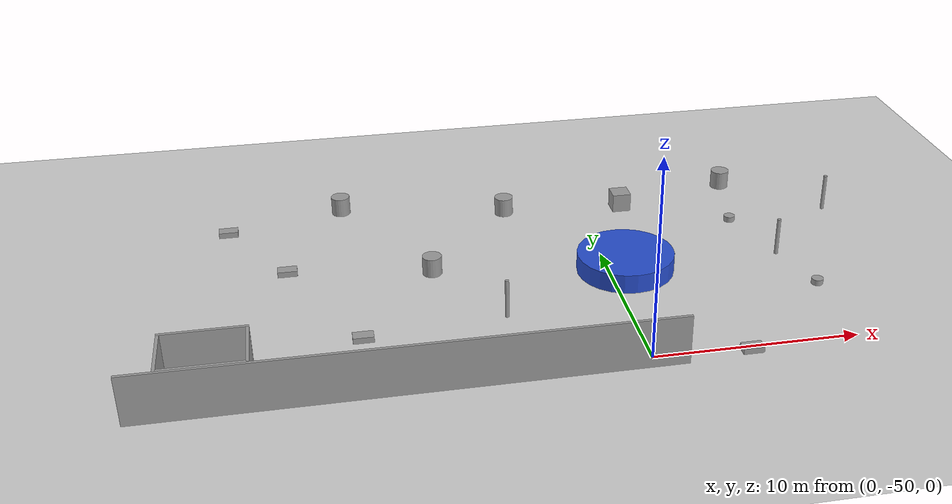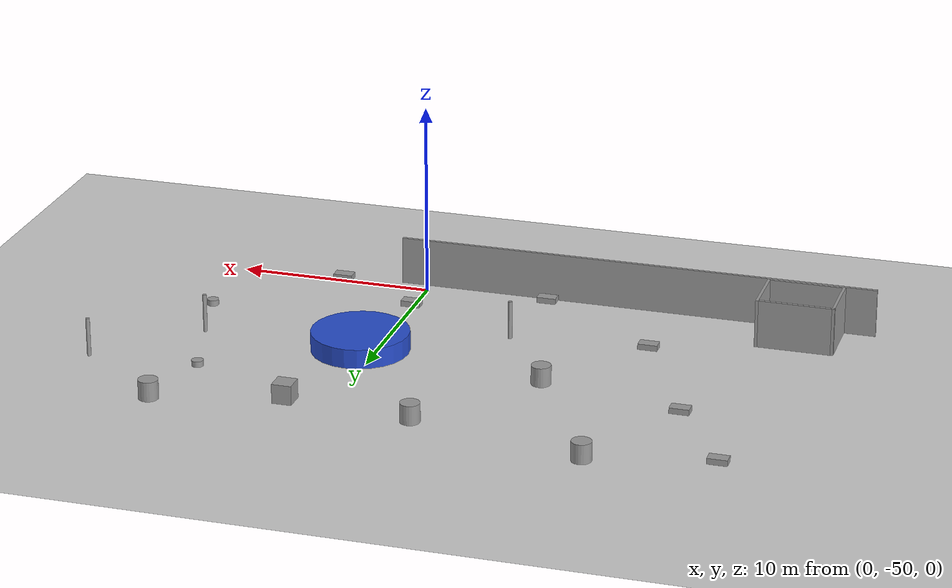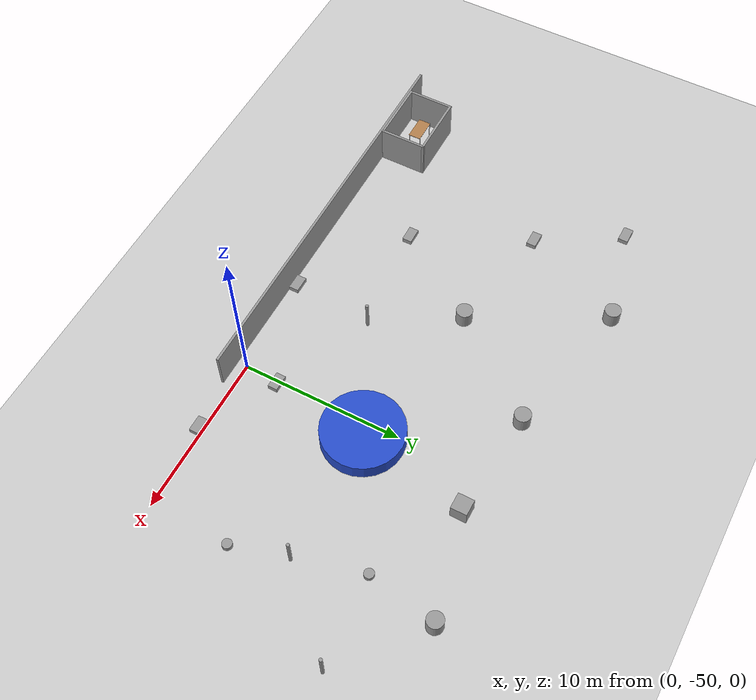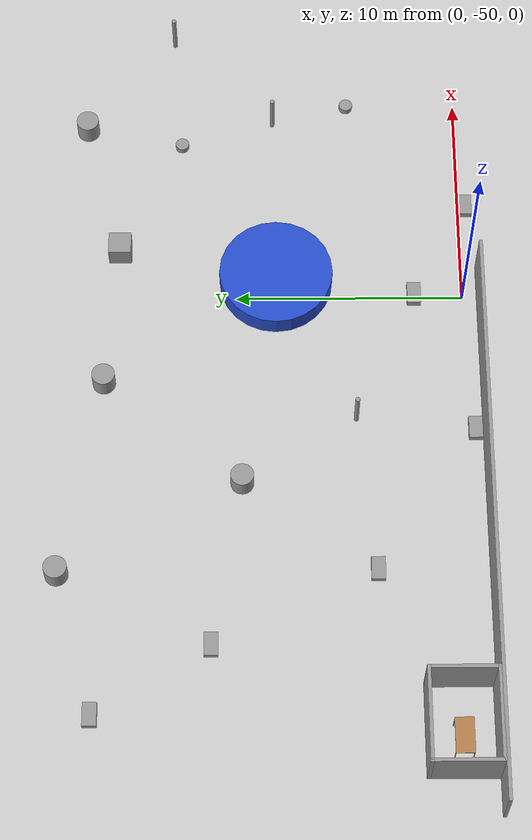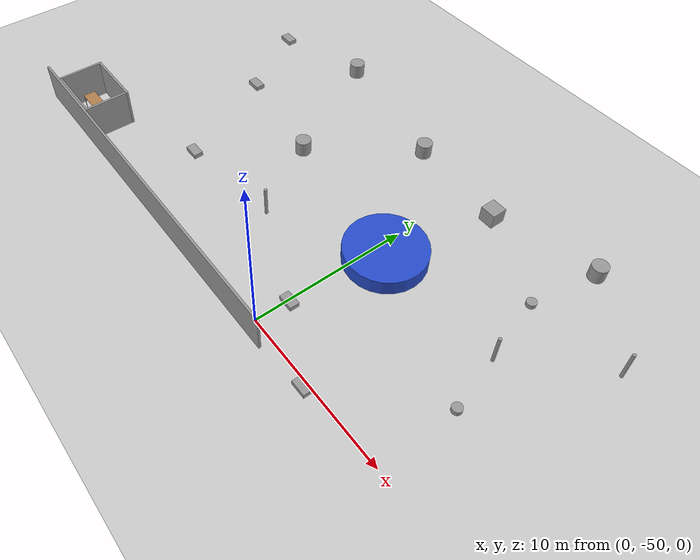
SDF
<sdf version="1.6">
 <world name="default">
  <model name="ground_plane">
   <static>1</static>
   <link name="link">
    <collision name="collision">
     <geometry><plane><normal>0 0 1</normal><size>105 105</size></plane></geometry>
     <surface>
      <contact><collide_bitmask>65535</collide_bitmask></contact>
      <friction><ode><mu>100</mu><mu2>50</mu2></ode></friction>
     </surface>
    </collision>
    <visual name="visual">
     <cast_shadows>0</cast_shadows>
     <geometry><plane><normal>0 0 1</normal><size>105 105</size></plane></geometry>
     <material>
      <script><uri>file://media/materials/scripts/gazebo.material</uri><name>Gazebo/Grey</name></script>
     </material>
    </visual>
   </link>
  </model>
  <model name="base3x4_37">
   <pose>-19.8731 -49.167 0 0 -0 0</pose>
   <link name="Wall_18">
    <collision name="Wall_18_Collision">
     <geometry><box><size>3 0.15 2.5</size></box></geometry>
     <pose>0 0 1.25 0 -0 0</pose>
    </collision>
    <visual name="Wall_18_Visual">
     <pose>0 0 1.25 0 -0 0</pose>
     <geometry><box><size>3 0.15 2.5</size></box></geometry>
     <material>
      <script><uri>file://media/materials/scripts/gazebo.material</uri><name>Gazebo/Grey</name></script>
      <ambient>1 1 1 1</ambient>
     </material>
     <meta><layer>0</layer></meta>
    </visual>
    <pose>-1.925 -0 0 0 -0 -1.5708</pose>
   </link>
   <link name="Wall_19">
    <collision name="Wall_19_Collision">
     <geometry><box><size>4 0.15 2.5</size></box></geometry>
     <pose>0 0 1.25 0 -0 0</pose>
    </collision>
    <visual name="Wall_19_Visual">
     <pose>0 0 1.25 0 -0 0</pose>
     <geometry><box><size>4 0.15 2.5</size></box></geometry>
     <material>
      <script><uri>file://media/materials/scripts/gazebo.material</uri><name>Gazebo/Grey</name></script>
      <ambient>1 1 1 1</ambient>
     </material>
     <meta><layer>0</layer></meta>
    </visual>
    <pose>-0 -1.425 0 0 -0 0</pose>
   </link>
   <link name="Wall_20">
    <collision name="Wall_20_Collision">
     <geometry><box><size>3 0.15 2.5</size></box></geometry>
     <pose>0 0 1.25 0 -0 0</pose>
    </collision>
    <visual name="Wall_20_Visual">
     <pose>0 0 1.25 0 -0 0</pose>
     <geometry><box><size>3 0.15 2.5</size></box></geometry>
     <material>
      <script><uri>file://media/materials/scripts/gazebo.material</uri><name>Gazebo/Grey</name></script>
      <ambient>1 1 1 1</ambient>
     </material>
     <meta><layer>0</layer></meta>
    </visual>
    <pose>1.925 -0 0 0 -0 1.5708</pose>
   </link>
   <link name="Wall_21">
    <collision name="Wall_21_Collision">
     <geometry><box><size>4 0.15 2.5</size></box></geometry>
     <pose>0 0 1.25 0 -0 0</pose>
    </collision>
    <visual name="Wall_21_Visual">
     <pose>0 0 1.25 0 -0 0</pose>
     <geometry><box><size>4 0.15 2.5</size></box></geometry>
     <material>
      <script><uri>file://media/materials/scripts/gazebo.material</uri><name>Gazebo/Grey</name></script>
      <ambient>1 1 1 1</ambient>
     </material>
     <meta><layer>0</layer></meta>
    </visual>
    <pose>-0 1.425 0 0 -0 3.14159</pose>
   </link>
   <static>1</static>
  </model>
  <model name="wall_25m_7">
   <pose>-10.9546 -50.7217 0 0 -0 0</pose>
   <link name="Wall_28">
    <collision name="Wall_28_Collision">
     <geometry><box><size>25 0.15 2.5</size></box></geometry>
     <pose>0 0 1.25 0 -0 0</pose>
    </collision>
    <visual name="Wall_28_Visual">
     <pose>0 0 1.25 0 -0 0</pose>
     <geometry><box><size>25 0.15 2.5</size></box></geometry>
     <material>
      <script><uri>file://media/materials/scripts/gazebo.material</uri><name>Gazebo/Grey</name></script>
      <ambient>1 1 1 1</ambient>
     </material>
     <meta><layer>0</layer></meta>
    </visual>
   </link>
   <static>1</static>
  </model>
  <model name="table_14">
   <static>1</static>
   <link name="link">
    <collision name="surface">
     <pose>0 0 1 0 -0 0</pose>
     <geometry><box><size>1.5 0.8 0.03</size></box></geometry>
     <surface><friction><ode><mu>0.6</mu><mu2>0.6</mu2></ode></friction></surface>
    </collision>
    <visual name="visual1">
     <pose>0 0 1 0 -0 0</pose>
     <geometry><box><size>1.5 0.8 0.03</size></box></geometry>
     <material>
      <script><uri>file://media/materials/scripts/gazebo.material</uri><name>Gazebo/Wood</name></script>
     </material>
    </visual>
    <collision name="front_left_leg">
     <pose>0.68 0.38 0.5 0 -0 0</pose>
     <geometry><cylinder><radius>0.02</radius><length>1</length></cylinder></geometry>
    </collision>
    <visual name="front_left_leg">
     <pose>0.68 0.38 0.5 0 -0 0</pose>
     <geometry><cylinder><radius>0.02</radius><length>1</length></cylinder></geometry>
     <material>
      <script><uri>file://media/materials/scripts/gazebo.material</uri><name>Gazebo/Grey</name></script>
     </material>
    </visual>
    <collision name="front_right_leg">
     <pose>0.68 -0.38 0.5 0 -0 0</pose>
     <geometry><cylinder><radius>0.02</radius><length>1</length></cylinder></geometry>
    </collision>
    <visual name="front_right_leg">
     <pose>0.68 -0.38 0.5 0 -0 0</pose>
     <geometry><cylinder><radius>0.02</radius><length>1</length></cylinder></geometry>
     <material>
      <script><uri>file://media/materials/scripts/gazebo.material</uri><name>Gazebo/Grey</name></script>
     </material>
    </visual>
    <collision name="back_right_leg">
     <pose>-0.68 -0.38 0.5 0 -0 0</pose>
     <geometry><cylinder><radius>0.02</radius><length>1</length></cylinder></geometry>
    </collision>
    <visual name="back_right_leg">
     <pose>-0.68 -0.38 0.5 0 -0 0</pose>
     <geometry><cylinder><radius>0.02</radius><length>1</length></cylinder></geometry>
     <material>
      <script><uri>file://media/materials/scripts/gazebo.material</uri><name>Gazebo/Grey</name></script>
     </material>
    </visual>
    <collision name="back_left_leg">
     <pose>-0.68 0.38 0.5 0 -0 0</pose>
     <geometry><cylinder><radius>0.02</radius><length>1</length></cylinder></geometry>
    </collision>
    <visual name="back_left_leg">
     <pose>-0.68 0.38 0.5 0 -0 0</pose>
     <geometry><cylinder><radius>0.02</radius><length>1</length></cylinder></geometry>
     <material>
      <script><uri>file://media/materials/scripts/gazebo.material</uri><name>Gazebo/Grey</name></script>
     </material>
    </visual>
   </link>
   <pose>-20.3507 -49.1946 0 0 -0 0</pose>
  </model>
  <model name="unit_cylinder_r2.5_l1">
   <link name="link">
    <inertial>
     <mass>1</mass>
     <inertia><ixx>0.145833</ixx><ixy>0</ixy><ixz>0</ixz><iyy>0.145833</iyy><iyz>0</iyz><izz>0.125</izz></inertia>
    </inertial>
    <visual name="visual">
     <geometry><cylinder><radius>2.5</radius><length>1</length></cylinder></geometry>
     <material>
      <script><name>Gazebo/Blue</name><uri>file://media/materials/scripts/gazebo.material</uri></script>
      <shader type="vertex"><normal_map>__default__</normal_map></shader>
      <ambient>0.3 0.3 0.3 1</ambient>
      <diffuse>0.7 0.7 0.7 1</diffuse>
      <specular>0.01 0.01 0.01 1</specular>
      <emissive>0 0 0 1</emissive>
     </material>
    </visual>
    <collision name="collision">
     <geometry><cylinder><radius>2.5</radius><length>1</length></cylinder></geometry>
     <surface>
      <friction>
       <ode><mu>1</mu><mu2>1</mu2><fdir1>0 0 0</fdir1><slip1>0</slip1><slip2>0</slip2></ode>
       <torsional>
        <coefficient>1</coefficient>
        <patch_radius>0</patch_radius>
        <surface_radius>0</surface_radius>
        <use_patch_radius>1</use_patch_radius>
        <ode><slip>0</slip></ode>
       </torsional>
      </friction>
      <bounce><restitution_coefficient>0</restitution_coefficient><threshold>1e+06</threshold></bounce>
      <contact>
       <collide_without_contact>0</collide_without_contact>
       <collide_without_contact_bitmask>1</collide_without_contact_bitmask>
       <collide_bitmask>1</collide_bitmask>
       <ode>
        <soft_cfm>0</soft_cfm>
        <soft_erp>0.2</soft_erp>
        <kp>1e+13</kp>
        <kd>1</kd>
        <max_vel>0.01</max_vel>
        <min_depth>0</min_depth>
       </ode>
       <bullet>
        <split_impulse>1</split_impulse>
        <split_impulse_penetration_threshold>-0.01</split_impulse_penetration_threshold>
        <soft_cfm>0</soft_cfm>
        <soft_erp>0.2</soft_erp>
        <kp>1e+13</kp>
        <kd>1</kd>
       </bullet>
      </contact>
     </surface>
    </collision>
   </link>
   <static>0</static>
   <pose>0.871877 -41.7628 0.5 0 -0 0.00014</pose>
  </model>
  <model name="unit_cylinder30x30cm">
   <link name="link">
    <inertial>
     <mass>1</mass>
     <inertia><ixx>0.145833</ixx><ixy>0</ixy><ixz>0</ixz><iyy>0.145833</iyy><iyz>0</iyz><izz>0.125</izz></inertia>
    </inertial>
    <visual name="visual">
     <geometry><cylinder><radius>0.3</radius><length>0.3</length></cylinder></geometry>
     <material>
      <script><name>Gazebo/Grey</name><uri>file://media/materials/scripts/gazebo.material</uri></script>
      <shader type="vertex"><normal_map>__default__</normal_map></shader>
      <ambient>0.3 0.3 0.3 1</ambient>
      <diffuse>0.7 0.7 0.7 1</diffuse>
      <specular>0.01 0.01 0.01 1</specular>
      <emissive>0 0 0 1</emissive>
     </material>
    </visual>
    <collision name="collision">
     <geometry><cylinder><radius>0.3</radius><length>0.3</length></cylinder></geometry>
     <surface>
      <friction>
       <ode><mu>1</mu><mu2>1</mu2><fdir1>0 0 0</fdir1><slip1>0</slip1><slip2>0</slip2></ode>
       <torsional>
        <coefficient>1</coefficient>
        <patch_radius>0</patch_radius>
        <surface_radius>0</surface_radius>
        <use_patch_radius>1</use_patch_radius>
        <ode><slip>0</slip></ode>
       </torsional>
      </friction>
      <bounce><restitution_coefficient>0</restitution_coefficient><threshold>1e+06</threshold></bounce>
      <contact>
       <collide_without_contact>0</collide_without_contact>
       <collide_without_contact_bitmask>1</collide_without_contact_bitmask>
       <collide_bitmask>1</collide_bitmask>
       <ode>
        <soft_cfm>0</soft_cfm>
        <soft_erp>0.2</soft_erp>
        <kp>1e+13</kp>
        <kd>1</kd>
        <max_vel>0.01</max_vel>
        <min_depth>0</min_depth>
       </ode>
       <bullet>
        <split_impulse>1</split_impulse>
        <split_impulse_penetration_threshold>-0.01</split_impulse_penetration_threshold>
        <soft_cfm>0</soft_cfm>
        <soft_erp>0.2</soft_erp>
        <kp>1e+13</kp>
        <kd>1</kd>
       </bullet>
      </contact>
     </surface>
    </collision>
   </link>
   <static>0</static>
   <pose>10.0032 -45.0422 0.149805 -0 -0 -0</pose>
  </model>
  <model name="unit_cylinder30x30cm_0">
   <link name="link">
    <inertial>
     <mass>1</mass>
     <inertia><ixx>0.145833</ixx><ixy>0</ixy><ixz>0</ixz><iyy>0.145833</iyy><iyz>0</iyz><izz>0.125</izz></inertia>
    </inertial>
    <visual name="visual">
     <geometry><cylinder><radius>0.3</radius><length>0.3</length></cylinder></geometry>
     <material>
      <script><name>Gazebo/Grey</name><uri>file://media/materials/scripts/gazebo.material</uri></script>
      <shader type="vertex"><normal_map>__default__</normal_map></shader>
      <ambient>0.3 0.3 0.3 1</ambient>
      <diffuse>0.7 0.7 0.7 1</diffuse>
      <specular>0.01 0.01 0.01 1</specular>
      <emissive>0 0 0 1</emissive>
     </material>
    </visual>
    <collision name="collision">
     <geometry><cylinder><radius>0.3</radius><length>0.3</length></cylinder></geometry>
     <surface>
      <friction>
       <ode><mu>1</mu><mu2>1</mu2><fdir1>0 0 0</fdir1><slip1>0</slip1><slip2>0</slip2></ode>
       <torsional>
        <coefficient>1</coefficient>
        <patch_radius>0</patch_radius>
        <surface_radius>0</surface_radius>
        <use_patch_radius>1</use_patch_radius>
        <ode><slip>0</slip></ode>
       </torsional>
      </friction>
      <bounce><restitution_coefficient>0</restitution_coefficient><threshold>1e+06</threshold></bounce>
      <contact>
       <collide_without_contact>0</collide_without_contact>
       <collide_without_contact_bitmask>1</collide_without_contact_bitmask>
       <collide_bitmask>1</collide_bitmask>
       <ode>
        <soft_cfm>0</soft_cfm>
        <soft_erp>0.2</soft_erp>
        <kp>1e+13</kp>
        <kd>1</kd>
        <max_vel>0.01</max_vel>
        <min_depth>0</min_depth>
       </ode>
       <bullet>
        <split_impulse>1</split_impulse>
        <split_impulse_penetration_threshold>-0.01</split_impulse_penetration_threshold>
        <soft_cfm>0</soft_cfm>
        <soft_erp>0.2</soft_erp>
        <kp>1e+13</kp>
        <kd>1</kd>
       </bullet>
      </contact>
     </surface>
    </collision>
   </link>
   <static>0</static>
   <pose>7.92592 -37.5286 0.149805 -0 -0 -0</pose>
  </model>
  <model name="unit_box_100x60x30cm">
   <link name="link">
    <inertial>
     <mass>1</mass>
     <inertia>
      <ixx>0.166667</ixx>
      <ixy>0</ixy>
      <ixz>0</ixz>
      <iyy>0.166667</iyy>
      <iyz>0</iyz>
      <izz>0.166667</izz>
     </inertia>
    </inertial>
    <visual name="visual">
     <geometry><box><size>1 0.6 0.3</size></box></geometry>
     <material>
      <script><name>Gazebo/Grey</name><uri>file://media/materials/scripts/gazebo.material</uri></script>
      <shader type="vertex"><normal_map>__default__</normal_map></shader>
      <ambient>0.3 0.3 0.3 1</ambient>
      <diffuse>0.7 0.7 0.7 1</diffuse>
      <specular>0.01 0.01 0.01 1</specular>
      <emissive>0 0 0 1</emissive>
     </material>
    </visual>
    <collision name="collision">
     <geometry><box><size>1 0.6 0.3</size></box></geometry>
     <surface>
      <friction>
       <ode><mu>1</mu><mu2>1</mu2><fdir1>0 0 0</fdir1><slip1>0</slip1><slip2>0</slip2></ode>
       <torsional>
        <coefficient>1</coefficient>
        <patch_radius>0</patch_radius>
        <surface_radius>0</surface_radius>
        <use_patch_radius>1</use_patch_radius>
        <ode><slip>0</slip></ode>
       </torsional>
      </friction>
      <bounce><restitution_coefficient>0</restitution_coefficient><threshold>1e+06</threshold></bounce>
      <contact>
       <collide_without_contact>0</collide_without_contact>
       <collide_without_contact_bitmask>1</collide_without_contact_bitmask>
       <collide_bitmask>1</collide_bitmask>
       <ode>
        <soft_cfm>0</soft_cfm>
        <soft_erp>0.2</soft_erp>
        <kp>1e+13</kp>
        <kd>1</kd>
        <max_vel>0.01</max_vel>
        <min_depth>0</min_depth>
       </ode>
       <bullet>
        <split_impulse>1</split_impulse>
        <split_impulse_penetration_threshold>-0.01</split_impulse_penetration_threshold>
        <soft_cfm>0</soft_cfm>
        <soft_erp>0.2</soft_erp>
        <kp>1e+13</kp>
        <kd>1</kd>
       </bullet>
      </contact>
     </surface>
    </collision>
   </link>
   <static>0</static>
   <pose>-12.88 -45.9622 0.15 0 -0 0</pose>
  </model>
  <model name="unit_box_100x60x30cm_0">
   <link name="link">
    <inertial>
     <mass>1</mass>
     <inertia>
      <ixx>0.166667</ixx>
      <ixy>0</ixy>
      <ixz>0</ixz>
      <iyy>0.166667</iyy>
      <iyz>0</iyz>
      <izz>0.166667</izz>
     </inertia>
    </inertial>
    <visual name="visual">
     <geometry><box><size>1 0.6 0.3</size></box></geometry>
     <material>
      <script><name>Gazebo/Grey</name><uri>file://media/materials/scripts/gazebo.material</uri></script>
      <shader type="vertex"><normal_map>__default__</normal_map></shader>
      <ambient>0.3 0.3 0.3 1</ambient>
      <diffuse>0.7 0.7 0.7 1</diffuse>
      <specular>0.01 0.01 0.01 1</specular>
      <emissive>0 0 0 1</emissive>
     </material>
    </visual>
    <collision name="collision">
     <geometry><box><size>1 0.6 0.3</size></box></geometry>
     <surface>
      <friction>
       <ode><mu>1</mu><mu2>1</mu2><fdir1>0 0 0</fdir1><slip1>0</slip1><slip2>0</slip2></ode>
       <torsional>
        <coefficient>1</coefficient>
        <patch_radius>0</patch_radius>
        <surface_radius>0</surface_radius>
        <use_patch_radius>1</use_patch_radius>
        <ode><slip>0</slip></ode>
       </torsional>
      </friction>
      <bounce><restitution_coefficient>0</restitution_coefficient><threshold>1e+06</threshold></bounce>
      <contact>
       <collide_without_contact>0</collide_without_contact>
       <collide_without_contact_bitmask>1</collide_without_contact_bitmask>
       <collide_bitmask>1</collide_bitmask>
       <ode>
        <soft_cfm>0</soft_cfm>
        <soft_erp>0.2</soft_erp>
        <kp>1e+13</kp>
        <kd>1</kd>
        <max_vel>0.01</max_vel>
        <min_depth>0</min_depth>
       </ode>
       <bullet>
        <split_impulse>1</split_impulse>
        <split_impulse_penetration_threshold>-0.01</split_impulse_penetration_threshold>
        <soft_cfm>0</soft_cfm>
        <soft_erp>0.2</soft_erp>
        <kp>1e+13</kp>
        <kd>1</kd>
       </bullet>
      </contact>
     </surface>
    </collision>
   </link>
   <static>0</static>
   <pose>-16.1827 -38.9703 0.15 0 -0 0</pose>
  </model>
  <model name="unit_cylinder_2_clone">
   <pose>8.76916 -33.2149 0.499805 -0 -0 -0</pose>
   <link name="link">
    <inertial>
     <mass>1</mass>
     <inertia><ixx>0.145833</ixx><ixy>0</ixy><ixz>0</ixz><iyy>0.145833</iyy><iyz>0</iyz><izz>0.125</izz></inertia>
    </inertial>
    <collision name="collision">
     <geometry><cylinder><radius>0.5</radius><length>1</length></cylinder></geometry>
    </collision>
    <visual name="visual">
     <geometry><cylinder><radius>0.5</radius><length>1</length></cylinder></geometry>
     <material>
      <script><name>Gazebo/Grey</name><uri>file://media/materials/scripts/gazebo.material</uri></script>
     </material>
    </visual>
   </link>
  </model>
  <model name="unit_cylinder_2_clone_0">
   <pose>-4.1392 -34.2546 0.499805 -0 -0 -0</pose>
   <link name="link">
    <inertial>
     <mass>1</mass>
     <inertia><ixx>0.145833</ixx><ixy>0</ixy><ixz>0</ixz><iyy>0.145833</iyy><iyz>0</iyz><izz>0.125</izz></inertia>
    </inertial>
    <collision name="collision">
     <geometry><cylinder><radius>0.5</radius><length>1</length></cylinder></geometry>
    </collision>
    <visual name="visual">
     <geometry><cylinder><radius>0.5</radius><length>1</length></cylinder></geometry>
     <material>
      <script><name>Gazebo/Grey</name><uri>file://media/materials/scripts/gazebo.material</uri></script>
     </material>
    </visual>
   </link>
  </model>
  <model name="unit_cylinder_2_clone_1">
   <pose>-8.90648 -40.2653 0.499805 -0 -0 -0</pose>
   <link name="link">
    <inertial>
     <mass>1</mass>
     <inertia><ixx>0.145833</ixx><ixy>0</ixy><ixz>0</ixz><iyy>0.145833</iyy><iyz>0</iyz><izz>0.125</izz></inertia>
    </inertial>
    <collision name="collision">
     <geometry><cylinder><radius>0.5</radius><length>1</length></cylinder></geometry>
    </collision>
    <visual name="visual">
     <geometry><cylinder><radius>0.5</radius><length>1</length></cylinder></geometry>
     <material>
      <script><name>Gazebo/Grey</name><uri>file://media/materials/scripts/gazebo.material</uri></script>
     </material>
    </visual>
   </link>
  </model>
  <model name="unit_cylinder_2_clone_2">
   <pose>-13.0382 -32.4779 0.499805 -0 -0 -0</pose>
   <link name="link">
    <inertial>
     <mass>1</mass>
     <inertia><ixx>0.145833</ixx><ixy>0</ixy><ixz>0</ixz><iyy>0.145833</iyy><iyz>0</iyz><izz>0.125</izz></inertia>
    </inertial>
    <collision name="collision">
     <geometry><cylinder><radius>0.5</radius><length>1</length></cylinder></geometry>
    </collision>
    <visual name="visual">
     <geometry><cylinder><radius>0.5</radius><length>1</length></cylinder></geometry>
     <material>
      <script><name>Gazebo/Grey</name><uri>file://media/materials/scripts/gazebo.material</uri></script>
     </material>
    </visual>
   </link>
  </model>
  <model name="unit_box_2_clone_0">
   <pose>2.37246 -34.8281 0.499902 0.000196 -0 7e-06</pose>
   <link name="link">
    <inertial>
     <mass>1</mass>
     <inertia>
      <ixx>0.166667</ixx>
      <ixy>0</ixy>
      <ixz>0</ixz>
      <iyy>0.166667</iyy>
      <iyz>0</iyz>
      <izz>0.166667</izz>
     </inertia>
    </inertial>
    <collision name="collision"><geometry><box><size>1 1 1</size></box></geometry></collision>
    <visual name="visual">
     <geometry><box><size>1 1 1</size></box></geometry>
     <material>
      <script><name>Gazebo/Grey</name><uri>file://media/materials/scripts/gazebo.material</uri></script>
     </material>
    </visual>
   </link>
  </model>
  <model name="unit_box_100x60x30cm_0_clone_3">
   <link name="link">
    <inertial>
     <mass>1</mass>
     <inertia>
      <ixx>0.166667</ixx>
      <ixy>0</ixy>
      <ixz>0</ixz>
      <iyy>0.166667</iyy>
      <iyz>0</iyz>
      <izz>0.166667</izz>
     </inertia>
    </inertial>
    <visual name="visual">
     <geometry><box><size>1 0.6 0.3</size></box></geometry>
     <material>
      <script><name>Gazebo/Grey</name><uri>file://media/materials/scripts/gazebo.material</uri></script>
      <shader type="vertex"><normal_map>__default__</normal_map></shader>
      <ambient>0.3 0.3 0.3 1</ambient>
      <diffuse>0.7 0.7 0.7 1</diffuse>
      <specular>0.01 0.01 0.01 1</specular>
      <emissive>0 0 0 1</emissive>
     </material>
    </visual>
    <collision name="collision">
     <geometry><box><size>1 0.6 0.3</size></box></geometry>
     <surface>
      <friction>
       <ode><mu>1</mu><mu2>1</mu2><fdir1>0 0 0</fdir1><slip1>0</slip1><slip2>0</slip2></ode>
       <torsional>
        <coefficient>1</coefficient>
        <patch_radius>0</patch_radius>
        <surface_radius>0</surface_radius>
        <use_patch_radius>1</use_patch_radius>
        <ode><slip>0</slip></ode>
       </torsional>
      </friction>
      <bounce><restitution_coefficient>0</restitution_coefficient><threshold>1e+06</threshold></bounce>
      <contact>
       <collide_without_contact>0</collide_without_contact>
       <collide_without_contact_bitmask>1</collide_without_contact_bitmask>
       <collide_bitmask>1</collide_bitmask>
       <ode>
        <soft_cfm>0</soft_cfm>
        <soft_erp>0.2</soft_erp>
        <kp>1e+13</kp>
        <kd>1</kd>
        <max_vel>0.01</max_vel>
        <min_depth>0</min_depth>
       </ode>
       <bullet>
        <split_impulse>1</split_impulse>
        <split_impulse_penetration_threshold>-0.01</split_impulse_penetration_threshold>
        <soft_cfm>0</soft_cfm>
        <soft_erp>0.2</soft_erp>
        <kp>1e+13</kp>
        <kd>1</kd>
       </bullet>
      </contact>
     </surface>
    </collision>
   </link>
   <static>0</static>
   <pose>-19.1713 -34.0416 0.15 0 -0 0</pose>
  </model>
  <model name="unit_box_100x60x30cm_0_clone_9">
   <link name="link">
    <inertial>
     <mass>1</mass>
     <inertia>
      <ixx>0.166667</ixx>
      <ixy>0</ixy>
      <ixz>0</ixz>
      <iyy>0.166667</iyy>
      <iyz>0</iyz>
      <izz>0.166667</izz>
     </inertia>
    </inertial>
    <visual name="visual">
     <geometry><box><size>1 0.6 0.3</size></box></geometry>
     <material>
      <script><name>Gazebo/Grey</name><uri>file://media/materials/scripts/gazebo.material</uri></script>
      <shader type="vertex"><normal_map>__default__</normal_map></shader>
      <ambient>0.3 0.3 0.3 1</ambient>
      <diffuse>0.7 0.7 0.7 1</diffuse>
      <specular>0.01 0.01 0.01 1</specular>
      <emissive>0 0 0 1</emissive>
     </material>
    </visual>
    <collision name="collision">
     <geometry><box><size>1 0.6 0.3</size></box></geometry>
     <surface>
      <friction>
       <ode><mu>1</mu><mu2>1</mu2><fdir1>0 0 0</fdir1><slip1>0</slip1><slip2>0</slip2></ode>
       <torsional>
        <coefficient>1</coefficient>
        <patch_radius>0</patch_radius>
        <surface_radius>0</surface_radius>
        <use_patch_radius>1</use_patch_radius>
        <ode><slip>0</slip></ode>
       </torsional>
      </friction>
      <bounce><restitution_coefficient>0</restitution_coefficient><threshold>1e+06</threshold></bounce>
      <contact>
       <collide_without_contact>0</collide_without_contact>
       <collide_without_contact_bitmask>1</collide_without_contact_bitmask>
       <collide_bitmask>1</collide_bitmask>
       <ode>
        <soft_cfm>0</soft_cfm>
        <soft_erp>0.2</soft_erp>
        <kp>1e+13</kp>
        <kd>1</kd>
        <max_vel>0.01</max_vel>
        <min_depth>0</min_depth>
       </ode>
       <bullet>
        <split_impulse>1</split_impulse>
        <split_impulse_penetration_threshold>-0.01</split_impulse_penetration_threshold>
        <soft_cfm>0</soft_cfm>
        <soft_erp>0.2</soft_erp>
        <kp>1e+13</kp>
        <kd>1</kd>
       </bullet>
      </contact>
     </surface>
    </collision>
   </link>
   <static>0</static>
   <pose>0.156033 -47.8694 0.15 0 -0 0</pose>
  </model>
  <model name="unit_box_100x60x30cm_clone">
   <link name="link">
    <inertial>
     <mass>1</mass>
     <inertia>
      <ixx>0.166667</ixx>
      <ixy>0</ixy>
      <ixz>0</ixz>
      <iyy>0.166667</iyy>
      <iyz>0</iyz>
      <izz>0.166667</izz>
     </inertia>
    </inertial>
    <visual name="visual">
     <geometry><box><size>1 0.6 0.3</size></box></geometry>
     <material>
      <script><name>Gazebo/Grey</name><uri>file://media/materials/scripts/gazebo.material</uri></script>
      <shader type="vertex"><normal_map>__default__</normal_map></shader>
      <ambient>0.3 0.3 0.3 1</ambient>
      <diffuse>0.7 0.7 0.7 1</diffuse>
      <specular>0.01 0.01 0.01 1</specular>
      <emissive>0 0 0 1</emissive>
     </material>
    </visual>
    <collision name="collision">
     <geometry><box><size>1 0.6 0.3</size></box></geometry>
     <surface>
      <friction>
       <ode><mu>1</mu><mu2>1</mu2><fdir1>0 0 0</fdir1><slip1>0</slip1><slip2>0</slip2></ode>
       <torsional>
        <coefficient>1</coefficient>
        <patch_radius>0</patch_radius>
        <surface_radius>0</surface_radius>
        <use_patch_radius>1</use_patch_radius>
        <ode><slip>0</slip></ode>
       </torsional>
      </friction>
      <bounce><restitution_coefficient>0</restitution_coefficient><threshold>1e+06</threshold></bounce>
      <contact>
       <collide_without_contact>0</collide_without_contact>
       <collide_without_contact_bitmask>1</collide_without_contact_bitmask>
       <collide_bitmask>1</collide_bitmask>
       <ode>
        <soft_cfm>0</soft_cfm>
        <soft_erp>0.2</soft_erp>
        <kp>1e+13</kp>
        <kd>1</kd>
        <max_vel>0.01</max_vel>
        <min_depth>0</min_depth>
       </ode>
       <bullet>
        <split_impulse>1</split_impulse>
        <split_impulse_penetration_threshold>-0.01</split_impulse_penetration_threshold>
        <soft_cfm>0</soft_cfm>
        <soft_erp>0.2</soft_erp>
        <kp>1e+13</kp>
        <kd>1</kd>
       </bullet>
      </contact>
     </surface>
    </collision>
   </link>
   <static>0</static>
   <pose>-6.40952 -50.3264 0.15 0 -0 0</pose>
  </model>
  <model name="unit_box_100x60x30cm_clone_0">
   <link name="link">
    <inertial>
     <mass>1</mass>
     <inertia>
      <ixx>0.166667</ixx>
      <ixy>0</ixy>
      <ixz>0</ixz>
      <iyy>0.166667</iyy>
      <iyz>0</iyz>
      <izz>0.166667</izz>
     </inertia>
    </inertial>
    <visual name="visual">
     <geometry><box><size>1 0.6 0.3</size></box></geometry>
     <material>
      <script><name>Gazebo/Grey</name><uri>file://media/materials/scripts/gazebo.material</uri></script>
      <shader type="vertex"><normal_map>__default__</normal_map></shader>
      <ambient>0.3 0.3 0.3 1</ambient>
      <diffuse>0.7 0.7 0.7 1</diffuse>
      <specular>0.01 0.01 0.01 1</specular>
      <emissive>0 0 0 1</emissive>
     </material>
    </visual>
    <collision name="collision">
     <geometry><box><size>1 0.6 0.3</size></box></geometry>
     <surface>
      <friction>
       <ode><mu>1</mu><mu2>1</mu2><fdir1>0 0 0</fdir1><slip1>0</slip1><slip2>0</slip2></ode>
       <torsional>
        <coefficient>1</coefficient>
        <patch_radius>0</patch_radius>
        <surface_radius>0</surface_radius>
        <use_patch_radius>1</use_patch_radius>
        <ode><slip>0</slip></ode>
       </torsional>
      </friction>
      <bounce><restitution_coefficient>0</restitution_coefficient><threshold>1e+06</threshold></bounce>
      <contact>
       <collide_without_contact>0</collide_without_contact>
       <collide_without_contact_bitmask>1</collide_without_contact_bitmask>
       <collide_bitmask>1</collide_bitmask>
       <ode>
        <soft_cfm>0</soft_cfm>
        <soft_erp>0.2</soft_erp>
        <kp>1e+13</kp>
        <kd>1</kd>
        <max_vel>0.01</max_vel>
        <min_depth>0</min_depth>
       </ode>
       <bullet>
        <split_impulse>1</split_impulse>
        <split_impulse_penetration_threshold>-0.01</split_impulse_penetration_threshold>
        <soft_cfm>0</soft_cfm>
        <soft_erp>0.2</soft_erp>
        <kp>1e+13</kp>
        <kd>1</kd>
       </bullet>
      </contact>
     </surface>
    </collision>
   </link>
   <static>0</static>
   <pose>4.66336 -50.3146 0.15 0 -0 0</pose>
  </model>
  <model name="unit_cylinder_r0.1_l2m_0_clone">
   <link name="link">
    <inertial>
     <mass>1</mass>
     <inertia><ixx>0.145833</ixx><ixy>0</ixy><ixz>0</ixz><iyy>0.145833</iyy><iyz>0</iyz><izz>0.125</izz></inertia>
    </inertial>
    <visual name="visual">
     <geometry><cylinder><radius>0.1</radius><length>2</length></cylinder></geometry>
     <material>
      <script><name>Gazebo/Grey</name><uri>file://media/materials/scripts/gazebo.material</uri></script>
      <shader type="vertex"><normal_map>__default__</normal_map></shader>
      <ambient>0.3 0.3 0.3 1</ambient>
      <diffuse>0.7 0.7 0.7 1</diffuse>
      <specular>0.01 0.01 0.01 1</specular>
      <emissive>0 0 0 1</emissive>
     </material>
    </visual>
    <collision name="collision">
     <geometry><cylinder><radius>0.1</radius><length>2</length></cylinder></geometry>
     <surface>
      <friction>
       <ode><mu>1</mu><mu2>1</mu2><fdir1>0 0 0</fdir1><slip1>0</slip1><slip2>0</slip2></ode>
       <torsional>
        <coefficient>1</coefficient>
        <patch_radius>0</patch_radius>
        <surface_radius>0</surface_radius>
        <use_patch_radius>1</use_patch_radius>
        <ode><slip>0</slip></ode>
       </torsional>
      </friction>
      <bounce><restitution_coefficient>0</restitution_coefficient><threshold>1e+06</threshold></bounce>
      <contact>
       <collide_without_contact>0</collide_without_contact>
       <collide_without_contact_bitmask>1</collide_without_contact_bitmask>
       <collide_bitmask>1</collide_bitmask>
       <ode>
        <soft_cfm>0</soft_cfm>
        <soft_erp>0.2</soft_erp>
        <kp>1e+13</kp>
        <kd>1</kd>
        <max_vel>0.01</max_vel>
        <min_depth>0</min_depth>
       </ode>
       <bullet>
        <split_impulse>1</split_impulse>
        <split_impulse_penetration_threshold>-0.01</split_impulse_penetration_threshold>
        <soft_cfm>0</soft_cfm>
        <soft_erp>0.2</soft_erp>
        <kp>1e+13</kp>
        <kd>1</kd>
       </bullet>
      </contact>
     </surface>
    </collision>
   </link>
   <static>0</static>
   <pose>13.5317 -37.1369 0.999808 -9e-06 1.9e-05 -0.032086</pose>
  </model>
  <model name="unit_cylinder_r0.1_l2m_0_clone_0">
   <link name="link">
    <inertial>
     <mass>1</mass>
     <inertia><ixx>0.145833</ixx><ixy>0</ixy><ixz>0</ixz><iyy>0.145833</iyy><iyz>0</iyz><izz>0.125</izz></inertia>
    </inertial>
    <visual name="visual">
     <geometry><cylinder><radius>0.1</radius><length>2</length></cylinder></geometry>
     <material>
      <script><name>Gazebo/Grey</name><uri>file://media/materials/scripts/gazebo.material</uri></script>
      <shader type="vertex"><normal_map>__default__</normal_map></shader>
      <ambient>0.3 0.3 0.3 1</ambient>
      <diffuse>0.7 0.7 0.7 1</diffuse>
      <specular>0.01 0.01 0.01 1</specular>
      <emissive>0 0 0 1</emissive>
     </material>
    </visual>
    <collision name="collision">
     <geometry><cylinder><radius>0.1</radius><length>2</length></cylinder></geometry>
     <surface>
      <friction>
       <ode><mu>1</mu><mu2>1</mu2><fdir1>0 0 0</fdir1><slip1>0</slip1><slip2>0</slip2></ode>
       <torsional>
        <coefficient>1</coefficient>
        <patch_radius>0</patch_radius>
        <surface_radius>0</surface_radius>
        <use_patch_radius>1</use_patch_radius>
        <ode><slip>0</slip></ode>
       </torsional>
      </friction>
      <bounce><restitution_coefficient>0</restitution_coefficient><threshold>1e+06</threshold></bounce>
      <contact>
       <collide_without_contact>0</collide_without_contact>
       <collide_without_contact_bitmask>1</collide_without_contact_bitmask>
       <collide_bitmask>1</collide_bitmask>
       <ode>
        <soft_cfm>0</soft_cfm>
        <soft_erp>0.2</soft_erp>
        <kp>1e+13</kp>
        <kd>1</kd>
        <max_vel>0.01</max_vel>
        <min_depth>0</min_depth>
       </ode>
       <bullet>
        <split_impulse>1</split_impulse>
        <split_impulse_penetration_threshold>-0.01</split_impulse_penetration_threshold>
        <soft_cfm>0</soft_cfm>
        <soft_erp>0.2</soft_erp>
        <kp>1e+13</kp>
        <kd>1</kd>
       </bullet>
      </contact>
     </surface>
    </collision>
   </link>
   <static>0</static>
   <pose>9.10024 -41.6448 0.999808 -9e-06 1.9e-05 -0.032086</pose>
  </model>
  <model name="unit_cylinder_r0.1_l2m_0_clone_5">
   <link name="link">
    <inertial>
     <mass>1</mass>
     <inertia><ixx>0.145833</ixx><ixy>0</ixy><ixz>0</ixz><iyy>0.145833</iyy><iyz>0</iyz><izz>0.125</izz></inertia>
    </inertial>
    <visual name="visual">
     <geometry><cylinder><radius>0.1</radius><length>2</length></cylinder></geometry>
     <material>
      <script><name>Gazebo/Grey</name><uri>file://media/materials/scripts/gazebo.material</uri></script>
      <shader type="vertex"><normal_map>__default__</normal_map></shader>
      <ambient>0.3 0.3 0.3 1</ambient>
      <diffuse>0.7 0.7 0.7 1</diffuse>
      <specular>0.01 0.01 0.01 1</specular>
      <emissive>0 0 0 1</emissive>
     </material>
    </visual>
    <collision name="collision">
     <geometry><cylinder><radius>0.1</radius><length>2</length></cylinder></geometry>
     <surface>
      <friction>
       <ode><mu>1</mu><mu2>1</mu2><fdir1>0 0 0</fdir1><slip1>0</slip1><slip2>0</slip2></ode>
       <torsional>
        <coefficient>1</coefficient>
        <patch_radius>0</patch_radius>
        <surface_radius>0</surface_radius>
        <use_patch_radius>1</use_patch_radius>
        <ode><slip>0</slip></ode>
       </torsional>
      </friction>
      <bounce><restitution_coefficient>0</restitution_coefficient><threshold>1e+06</threshold></bounce>
      <contact>
       <collide_without_contact>0</collide_without_contact>
       <collide_without_contact_bitmask>1</collide_without_contact_bitmask>
       <collide_bitmask>1</collide_bitmask>
       <ode>
        <soft_cfm>0</soft_cfm>
        <soft_erp>0.2</soft_erp>
        <kp>1e+13</kp>
        <kd>1</kd>
        <max_vel>0.01</max_vel>
        <min_depth>0</min_depth>
       </ode>
       <bullet>
        <split_impulse>1</split_impulse>
        <split_impulse_penetration_threshold>-0.01</split_impulse_penetration_threshold>
        <soft_cfm>0</soft_cfm>
        <soft_erp>0.2</soft_erp>
        <kp>1e+13</kp>
        <kd>1</kd>
       </bullet>
      </contact>
     </surface>
    </collision>
   </link>
   <static>0</static>
   <pose>-5.90223 -45.1922 0.999808 -9e-06 1.9e-05 -0.032086</pose>
  </model>
 </world>
</sdf>
